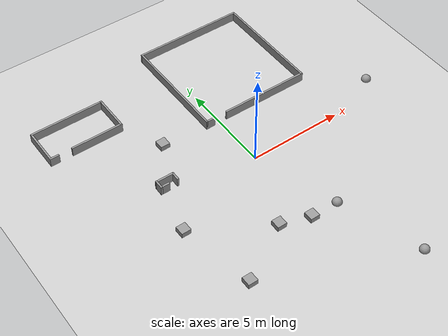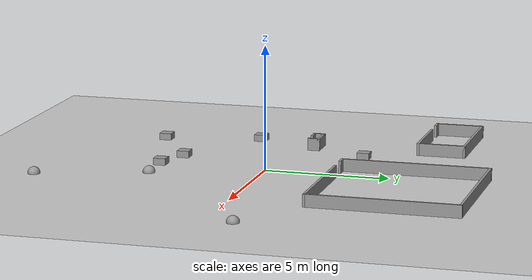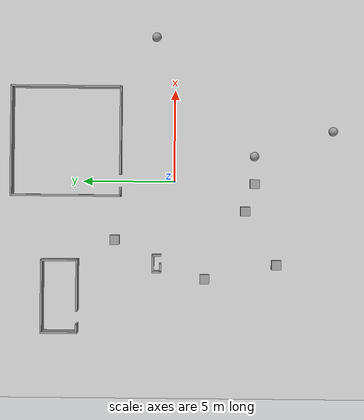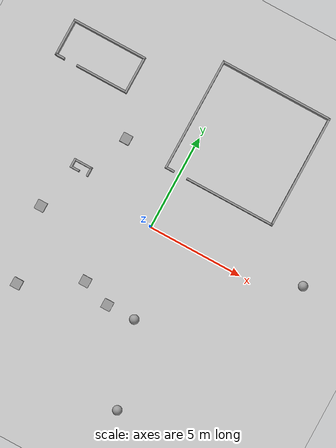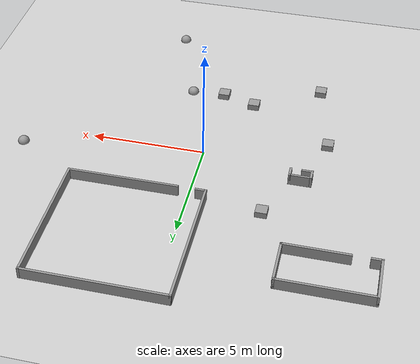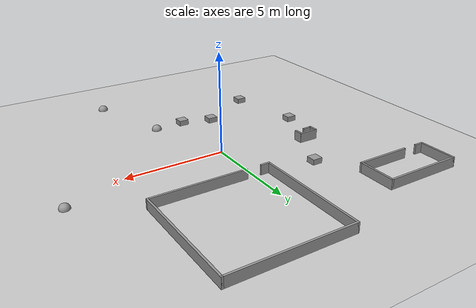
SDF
<sdf version="1.6">
 <world name="default">
  <model name="ground_plane">
   <static>1</static>
   <link name="link">
    <collision name="collision">
     <geometry><plane><normal>0 0 1</normal><size>20 20</size></plane></geometry>
     <surface>
      <contact><collide_bitmask>65535</collide_bitmask></contact>
      <friction><ode><mu>100</mu><mu2>50</mu2></ode></friction>
     </surface>
    </collision>
    <visual name="visual">
     <cast_shadows>0</cast_shadows>
     <geometry><plane><normal>0 0 1</normal><size>20 20</size></plane></geometry>
     <material>
      <script><uri>file://media/materials/scripts/gazebo.material</uri><name>Gazebo/Grey</name></script>
     </material>
    </visual>
   </link>
  </model>
  <model name="shape7">
   <pose>2.2 5.9 0 0 -0 0</pose>
   <link name="Wall_34">
    <collision name="Wall_34_Collision">
     <geometry><box><size>6 0.1 0.5</size></box></geometry>
     <pose>0 0 0.25 0 -0 0</pose>
    </collision>
    <visual name="Wall_34_Visual">
     <pose>0 0 0.25 0 -0 0</pose>
     <geometry><box><size>6 0.1 0.5</size></box></geometry>
     <material>
      <script><uri>file://media/materials/scripts/gazebo.material</uri><name>Gazebo/Grey</name></script>
      <ambient>1 1 1 1</ambient>
     </material>
     <meta><layer>0</layer></meta>
    </visual>
    <pose>0 2.95 0 0 -0 0</pose>
   </link>
   <link name="Wall_35">
    <collision name="Wall_35_Collision">
     <geometry><box><size>6 0.1 0.5</size></box></geometry>
     <pose>0 0 0.25 0 -0 0</pose>
    </collision>
    <visual name="Wall_35_Visual">
     <pose>0 0 0.25 0 -0 0</pose>
     <geometry><box><size>6 0.1 0.5</size></box></geometry>
     <material>
      <script><uri>file://media/materials/scripts/gazebo.material</uri><name>Gazebo/Grey</name></script>
      <ambient>1 1 1 1</ambient>
     </material>
     <meta><layer>0</layer></meta>
    </visual>
    <pose>2.95 0 0 0 -0 -1.5708</pose>
   </link>
   <link name="Wall_36">
    <collision name="Wall_36_Collision">
     <geometry><box><size>4.8 0.1 0.5</size></box></geometry>
     <pose>0 0 0.25 0 -0 0</pose>
    </collision>
    <visual name="Wall_36_Visual">
     <pose>0 0 0.25 0 -0 0</pose>
     <geometry><box><size>4.8 0.1 0.5</size></box></geometry>
     <material>
      <script><uri>file://media/materials/scripts/gazebo.material</uri><name>Gazebo/Grey</name></script>
      <ambient>1 1 1 1</ambient>
     </material>
     <meta><layer>0</layer></meta>
    </visual>
    <pose>0.6 -2.95 0 0 -0 3.14159</pose>
   </link>
   <link name="Wall_38">
    <collision name="Wall_38_Collision">
     <geometry><box><size>6 0.1 0.5</size></box></geometry>
     <pose>0 0 0.25 0 -0 0</pose>
    </collision>
    <visual name="Wall_38_Visual">
     <pose>0 0 0.25 0 -0 0</pose>
     <geometry><box><size>6 0.1 0.5</size></box></geometry>
     <material>
      <script><uri>file://media/materials/scripts/gazebo.material</uri><name>Gazebo/Grey</name></script>
      <ambient>1 1 1 1</ambient>
     </material>
     <meta><layer>0</layer></meta>
    </visual>
    <pose>-2.95 0 0 0 -0 -1.5708</pose>
   </link>
   <link name="Wall_39">
    <collision name="Wall_39_Collision">
     <geometry><box><size>0.5 0.1 0.5</size></box></geometry>
     <pose>0 0 0.25 0 -0 0</pose>
    </collision>
    <visual name="Wall_39_Visual">
     <pose>0 0 0.25 0 -0 0</pose>
     <geometry><box><size>0.5 0.1 0.5</size></box></geometry>
     <material>
      <script><uri>file://media/materials/scripts/gazebo.material</uri><name>Gazebo/Grey</name></script>
      <ambient>1 1 1 1</ambient>
     </material>
     <meta><layer>0</layer></meta>
    </visual>
    <pose>-2.75 -2.95 0 0 -0 0</pose>
   </link>
   <static>1</static>
  </model>
  <model name="shape0">
   <pose>-4.4 0.95 0 0 -0 0</pose>
   <link name="Wall_0">
    <pose>0 0.2 0 0 -0 0</pose>
    <inertial>
     <mass>1</mass>
     <inertia><ixx>1</ixx><ixy>0</ixy><ixz>0</ixz><iyy>1</iyy><iyz>0</iyz><izz>1</izz></inertia>
    </inertial>
    <visual name="Wall_0_Visual">
     <pose>0 0 0.25 0 -0 0</pose>
     <geometry><box><size>1 0.1 0.5</size></box></geometry>
     <material>
      <script><uri>file://media/materials/scripts/gazebo.material</uri><name>Gazebo/Grey</name></script>
      <ambient>1 1 1 1</ambient>
      <shader type="vertex"><normal_map>__default__</normal_map></shader>
      <diffuse>0.7 0.7 0.7 1</diffuse>
      <specular>0.01 0.01 0.01 1</specular>
      <emissive>0 0 0 1</emissive>
     </material>
     <meta><layer>0</layer></meta>
    </visual>
    <collision name="Wall_0_Collision">
     <pose>0 0 0.25 0 -0 0</pose>
     <geometry><box><size>1 0.1 0.5</size></box></geometry>
     <surface>
      <friction>
       <ode><mu>1</mu><mu2>1</mu2><fdir1>0 0 0</fdir1><slip1>0</slip1><slip2>0</slip2></ode>
       <torsional>
        <coefficient>1</coefficient>
        <patch_radius>0</patch_radius>
        <surface_radius>0</surface_radius>
        <use_patch_radius>1</use_patch_radius>
        <ode><slip>0</slip></ode>
       </torsional>
      </friction>
      <bounce><restitution_coefficient>0</restitution_coefficient><threshold>1e+06</threshold></bounce>
      <contact>
       <collide_without_contact>0</collide_without_contact>
       <collide_without_contact_bitmask>1</collide_without_contact_bitmask>
       <collide_bitmask>1</collide_bitmask>
       <ode>
        <soft_cfm>0</soft_cfm>
        <soft_erp>0.2</soft_erp>
        <kp>1e+13</kp>
        <kd>1</kd>
        <max_vel>0.01</max_vel>
        <min_depth>0</min_depth>
       </ode>
       <bullet>
        <split_impulse>1</split_impulse>
        <split_impulse_penetration_threshold>-0.01</split_impulse_penetration_threshold>
        <soft_cfm>0</soft_cfm>
        <soft_erp>0.2</soft_erp>
        <kp>1e+13</kp>
        <kd>1</kd>
       </bullet>
      </contact>
     </surface>
    </collision>
   </link>
   <link name="Wall_2">
    <pose>-0.45 0 0.01 0 0 -1.5708</pose>
    <inertial>
     <mass>1</mass>
     <inertia><ixx>1</ixx><ixy>0</ixy><ixz>0</ixz><iyy>1</iyy><iyz>0</iyz><izz>1</izz></inertia>
    </inertial>
    <visual name="Wall_2_Visual">
     <pose>0 0 0.25 0 -0 0</pose>
     <geometry><box><size>0.5 0.1 0.5</size></box></geometry>
     <material>
      <script><uri>file://media/materials/scripts/gazebo.material</uri><name>Gazebo/Grey</name></script>
      <ambient>1 1 1 1</ambient>
      <shader type="vertex"><normal_map>__default__</normal_map></shader>
      <diffuse>0.7 0.7 0.7 1</diffuse>
      <specular>0.01 0.01 0.01 1</specular>
      <emissive>0 0 0 1</emissive>
     </material>
     <meta><layer>0</layer></meta>
    </visual>
    <collision name="Wall_2_Collision">
     <pose>0 0 0.25 0 -0 0</pose>
     <geometry><box><size>0.5 0.1 0.5</size></box></geometry>
     <surface>
      <friction>
       <ode><mu>1</mu><mu2>1</mu2><fdir1>0 0 0</fdir1><slip1>0</slip1><slip2>0</slip2></ode>
       <torsional>
        <coefficient>1</coefficient>
        <patch_radius>0</patch_radius>
        <surface_radius>0</surface_radius>
        <use_patch_radius>1</use_patch_radius>
        <ode><slip>0</slip></ode>
       </torsional>
      </friction>
      <bounce><restitution_coefficient>0</restitution_coefficient><threshold>1e+06</threshold></bounce>
      <contact>
       <collide_without_contact>0</collide_without_contact>
       <collide_without_contact_bitmask>1</collide_without_contact_bitmask>
       <collide_bitmask>1</collide_bitmask>
       <ode>
        <soft_cfm>0</soft_cfm>
        <soft_erp>0.2</soft_erp>
        <kp>1e+13</kp>
        <kd>1</kd>
        <max_vel>0.01</max_vel>
        <min_depth>0</min_depth>
       </ode>
       <bullet>
        <split_impulse>1</split_impulse>
        <split_impulse_penetration_threshold>-0.01</split_impulse_penetration_threshold>
        <soft_cfm>0</soft_cfm>
        <soft_erp>0.2</soft_erp>
        <kp>1e+13</kp>
        <kd>1</kd>
       </bullet>
      </contact>
     </surface>
    </collision>
   </link>
   <link name="Wall_4">
    <pose>0.45 0 0 0 0 -1.5708</pose>
    <inertial>
     <mass>1</mass>
     <inertia><ixx>1</ixx><ixy>0</ixy><ixz>0</ixz><iyy>1</iyy><iyz>0</iyz><izz>1</izz></inertia>
    </inertial>
    <visual name="Wall_4_Visual">
     <pose>0 0 0.25 0 -0 0</pose>
     <geometry><box><size>0.5 0.1 0.5</size></box></geometry>
     <material>
      <script><uri>file://media/materials/scripts/gazebo.material</uri><name>Gazebo/Grey</name></script>
      <ambient>1 1 1 1</ambient>
      <shader type="vertex"><normal_map>__default__</normal_map></shader>
      <diffuse>0.7 0.7 0.7 1</diffuse>
      <specular>0.01 0.01 0.01 1</specular>
      <emissive>0 0 0 1</emissive>
     </material>
     <meta><layer>0</layer></meta>
    </visual>
    <collision name="Wall_4_Collision">
     <pose>0 0 0.25 0 -0 0</pose>
     <geometry><box><size>0.5 0.1 0.5</size></box></geometry>
     <surface>
      <friction>
       <ode><mu>1</mu><mu2>1</mu2><fdir1>0 0 0</fdir1><slip1>0</slip1><slip2>0</slip2></ode>
       <torsional>
        <coefficient>1</coefficient>
        <patch_radius>0</patch_radius>
        <surface_radius>0</surface_radius>
        <use_patch_radius>1</use_patch_radius>
        <ode><slip>0</slip></ode>
       </torsional>
      </friction>
      <bounce><restitution_coefficient>0</restitution_coefficient><threshold>1e+06</threshold></bounce>
      <contact>
       <collide_without_contact>0</collide_without_contact>
       <collide_without_contact_bitmask>1</collide_without_contact_bitmask>
       <collide_bitmask>1</collide_bitmask>
       <ode>
        <soft_cfm>0</soft_cfm>
        <soft_erp>0.2</soft_erp>
        <kp>1e+13</kp>
        <kd>1</kd>
        <max_vel>0.01</max_vel>
        <min_depth>0</min_depth>
       </ode>
       <bullet>
        <split_impulse>1</split_impulse>
        <split_impulse_penetration_threshold>-0.01</split_impulse_penetration_threshold>
        <soft_cfm>0</soft_cfm>
        <soft_erp>0.2</soft_erp>
        <kp>1e+13</kp>
        <kd>1</kd>
       </bullet>
      </contact>
     </surface>
    </collision>
   </link>
   <link name="Wall_7">
    <pose>-0.25 -0.2 0 0 -0 0</pose>
    <inertial>
     <mass>1</mass>
     <inertia><ixx>1</ixx><ixy>0</ixy><ixz>0</ixz><iyy>1</iyy><iyz>0</iyz><izz>1</izz></inertia>
    </inertial>
    <visual name="Wall_7_Visual">
     <pose>0 0 0.25 0 -0 0</pose>
     <geometry><box><size>0.5 0.1 0.5</size></box></geometry>
     <material>
      <script><uri>file://media/materials/scripts/gazebo.material</uri><name>Gazebo/Grey</name></script>
      <ambient>1 1 1 1</ambient>
      <shader type="vertex"><normal_map>__default__</normal_map></shader>
      <diffuse>0.7 0.7 0.7 1</diffuse>
      <specular>0.01 0.01 0.01 1</specular>
      <emissive>0 0 0 1</emissive>
     </material>
     <meta><layer>0</layer></meta>
    </visual>
    <collision name="Wall_7_Collision">
     <pose>0 0 0.25 0 -0 0</pose>
     <geometry><box><size>0.5 0.1 0.5</size></box></geometry>
     <surface>
      <friction>
       <ode><mu>1</mu><mu2>1</mu2><fdir1>0 0 0</fdir1><slip1>0</slip1><slip2>0</slip2></ode>
       <torsional>
        <coefficient>1</coefficient>
        <patch_radius>0</patch_radius>
        <surface_radius>0</surface_radius>
        <use_patch_radius>1</use_patch_radius>
        <ode><slip>0</slip></ode>
       </torsional>
      </friction>
      <bounce><restitution_coefficient>0</restitution_coefficient><threshold>1e+06</threshold></bounce>
      <contact>
       <collide_without_contact>0</collide_without_contact>
       <collide_without_contact_bitmask>1</collide_without_contact_bitmask>
       <collide_bitmask>1</collide_bitmask>
       <ode>
        <soft_cfm>0</soft_cfm>
        <soft_erp>0.2</soft_erp>
        <kp>1e+13</kp>
        <kd>1</kd>
        <max_vel>0.01</max_vel>
        <min_depth>0</min_depth>
       </ode>
       <bullet>
        <split_impulse>1</split_impulse>
        <split_impulse_penetration_threshold>-0.01</split_impulse_penetration_threshold>
        <soft_cfm>0</soft_cfm>
        <soft_erp>0.2</soft_erp>
        <kp>1e+13</kp>
        <kd>1</kd>
       </bullet>
      </contact>
     </surface>
    </collision>
   </link>
   <static>1</static>
  </model>
  <model name="box_d=50">
   <link name="link_2">
    <inertial>
     <mass>1</mass>
     <inertia>
      <ixx>0.166667</ixx>
      <ixy>0</ixy>
      <ixz>0</ixz>
      <iyy>0.166667</iyy>
      <iyz>0</iyz>
      <izz>0.166667</izz>
     </inertia>
    </inertial>
    <pose>-4.45 -5.55 0 0 -0 0</pose>
    <visual name="visual">
     <geometry><box><size>0.5 0.5 0.5</size></box></geometry>
     <material>
      <lighting>1</lighting>
      <script><uri>file://media/materials/scripts/gazebo.material</uri><name>Gazebo/Grey</name></script>
      <shader type="vertex"><normal_map>__default__</normal_map></shader>
      <ambient>0.3 0.3 0.3 1</ambient>
      <diffuse>0.7 0.7 0.7 1</diffuse>
      <specular>0.01 0.01 0.01 1</specular>
      <emissive>0 0 0 1</emissive>
     </material>
    </visual>
    <collision name="collision">
     <geometry><box><size>0.5 0.5 0.5</size></box></geometry>
     <surface>
      <friction>
       <ode><mu>1</mu><mu2>1</mu2><fdir1>0 0 0</fdir1><slip1>0</slip1><slip2>0</slip2></ode>
       <torsional>
        <coefficient>1</coefficient>
        <patch_radius>0</patch_radius>
        <surface_radius>0</surface_radius>
        <use_patch_radius>1</use_patch_radius>
        <ode><slip>0</slip></ode>
       </torsional>
      </friction>
      <bounce><restitution_coefficient>0</restitution_coefficient><threshold>1e+06</threshold></bounce>
      <contact>
       <collide_without_contact>0</collide_without_contact>
       <collide_without_contact_bitmask>1</collide_without_contact_bitmask>
       <collide_bitmask>1</collide_bitmask>
       <ode>
        <soft_cfm>0</soft_cfm>
        <soft_erp>0.2</soft_erp>
        <kp>1e+13</kp>
        <kd>1</kd>
        <max_vel>0.01</max_vel>
        <min_depth>0</min_depth>
       </ode>
       <bullet>
        <split_impulse>1</split_impulse>
        <split_impulse_penetration_threshold>-0.01</split_impulse_penetration_threshold>
        <soft_cfm>0</soft_cfm>
        <soft_erp>0.2</soft_erp>
        <kp>1e+13</kp>
        <kd>1</kd>
       </bullet>
      </contact>
     </surface>
    </collision>
   </link>
   <static>0</static>
  </model>
  <model name="ball_d=50">
   <link name="link_1">
    <inertial>
     <mass>1</mass>
     <inertia><ixx>0.1</ixx><ixy>0</ixy><ixz>0</ixz><iyy>0.1</iyy><iyz>0</iyz><izz>0.1</izz></inertia>
    </inertial>
    <pose>1.45 -4.35 0 0 -0 0</pose>
    <visual name="visual">
     <geometry><sphere><radius>0.25</radius></sphere></geometry>
     <material>
      <lighting>1</lighting>
      <script><uri>file://media/materials/scripts/gazebo.material</uri><name>Gazebo/Grey</name></script>
      <shader type="vertex"><normal_map>__default__</normal_map></shader>
      <ambient>0.3 0.3 0.3 1</ambient>
      <diffuse>0.7 0.7 0.7 1</diffuse>
      <specular>0.01 0.01 0.01 1</specular>
      <emissive>0 0 0 1</emissive>
     </material>
    </visual>
    <collision name="collision">
     <geometry><sphere><radius>0.25</radius></sphere></geometry>
     <surface>
      <friction>
       <ode><mu>1</mu><mu2>1</mu2><fdir1>0 0 0</fdir1><slip1>0</slip1><slip2>0</slip2></ode>
       <torsional>
        <coefficient>1</coefficient>
        <patch_radius>0</patch_radius>
        <surface_radius>0</surface_radius>
        <use_patch_radius>1</use_patch_radius>
        <ode><slip>0</slip></ode>
       </torsional>
      </friction>
      <bounce><restitution_coefficient>0</restitution_coefficient><threshold>1e+06</threshold></bounce>
      <contact>
       <collide_without_contact>0</collide_without_contact>
       <collide_without_contact_bitmask>1</collide_without_contact_bitmask>
       <collide_bitmask>1</collide_bitmask>
       <ode>
        <soft_cfm>0</soft_cfm>
        <soft_erp>0.2</soft_erp>
        <kp>1e+13</kp>
        <kd>1</kd>
        <max_vel>0.01</max_vel>
        <min_depth>0</min_depth>
       </ode>
       <bullet>
        <split_impulse>1</split_impulse>
        <split_impulse_penetration_threshold>-0.01</split_impulse_penetration_threshold>
        <soft_cfm>0</soft_cfm>
        <soft_erp>0.2</soft_erp>
        <kp>1e+13</kp>
        <kd>1</kd>
       </bullet>
      </contact>
     </surface>
    </collision>
   </link>
   <static>0</static>
  </model>
  <model name="box_d=50">
   <link name="link_2">
    <inertial>
     <mass>1</mass>
     <inertia>
      <ixx>0.166667</ixx>
      <ixy>0</ixy>
      <ixz>0</ixz>
      <iyy>0.166667</iyy>
      <iyz>0</iyz>
      <izz>0.166667</izz>
     </inertia>
    </inertial>
    <pose>-0.0500002 -4.35 0 0 -0 0</pose>
    <visual name="visual">
     <geometry><box><size>0.5 0.5 0.5</size></box></geometry>
     <material>
      <lighting>1</lighting>
      <script><uri>file://media/materials/scripts/gazebo.material</uri><name>Gazebo/Grey</name></script>
      <shader type="vertex"><normal_map>__default__</normal_map></shader>
      <ambient>0.3 0.3 0.3 1</ambient>
      <diffuse>0.7 0.7 0.7 1</diffuse>
      <specular>0.01 0.01 0.01 1</specular>
      <emissive>0 0 0 1</emissive>
     </material>
    </visual>
    <collision name="collision">
     <geometry><box><size>0.5 0.5 0.5</size></box></geometry>
     <surface>
      <friction>
       <ode><mu>1</mu><mu2>1</mu2><fdir1>0 0 0</fdir1><slip1>0</slip1><slip2>0</slip2></ode>
       <torsional>
        <coefficient>1</coefficient>
        <patch_radius>0</patch_radius>
        <surface_radius>0</surface_radius>
        <use_patch_radius>1</use_patch_radius>
        <ode><slip>0</slip></ode>
       </torsional>
      </friction>
      <bounce><restitution_coefficient>0</restitution_coefficient><threshold>1e+06</threshold></bounce>
      <contact>
       <collide_without_contact>0</collide_without_contact>
       <collide_without_contact_bitmask>1</collide_without_contact_bitmask>
       <collide_bitmask>1</collide_bitmask>
       <ode>
        <soft_cfm>0</soft_cfm>
        <soft_erp>0.2</soft_erp>
        <kp>1e+13</kp>
        <kd>1</kd>
        <max_vel>0.01</max_vel>
        <min_depth>0</min_depth>
       </ode>
       <bullet>
        <split_impulse>1</split_impulse>
        <split_impulse_penetration_threshold>-0.01</split_impulse_penetration_threshold>
        <soft_cfm>0</soft_cfm>
        <soft_erp>0.2</soft_erp>
        <kp>1e+13</kp>
        <kd>1</kd>
       </bullet>
      </contact>
     </surface>
    </collision>
   </link>
   <static>0</static>
  </model>
  <model name="box_d=50">
   <link name="link_2">
    <inertial>
     <mass>1</mass>
     <inertia>
      <ixx>0.166667</ixx>
      <ixy>0</ixy>
      <ixz>0</ixz>
      <iyy>0.166667</iyy>
      <iyz>0</iyz>
      <izz>0.166667</izz>
     </inertia>
    </inertial>
    <pose>-1.55 -3.85 0 0 -0 0</pose>
    <visual name="visual">
     <geometry><box><size>0.5 0.5 0.5</size></box></geometry>
     <material>
      <lighting>1</lighting>
      <script><uri>file://media/materials/scripts/gazebo.material</uri><name>Gazebo/Grey</name></script>
      <shader type="vertex"><normal_map>__default__</normal_map></shader>
      <ambient>0.3 0.3 0.3 1</ambient>
      <diffuse>0.7 0.7 0.7 1</diffuse>
      <specular>0.01 0.01 0.01 1</specular>
      <emissive>0 0 0 1</emissive>
     </material>
    </visual>
    <collision name="collision">
     <geometry><box><size>0.5 0.5 0.5</size></box></geometry>
     <surface>
      <friction>
       <ode><mu>1</mu><mu2>1</mu2><fdir1>0 0 0</fdir1><slip1>0</slip1><slip2>0</slip2></ode>
       <torsional>
        <coefficient>1</coefficient>
        <patch_radius>0</patch_radius>
        <surface_radius>0</surface_radius>
        <use_patch_radius>1</use_patch_radius>
        <ode><slip>0</slip></ode>
       </torsional>
      </friction>
      <bounce><restitution_coefficient>0</restitution_coefficient><threshold>1e+06</threshold></bounce>
      <contact>
       <collide_without_contact>0</collide_without_contact>
       <collide_without_contact_bitmask>1</collide_without_contact_bitmask>
       <collide_bitmask>1</collide_bitmask>
       <ode>
        <soft_cfm>0</soft_cfm>
        <soft_erp>0.2</soft_erp>
        <kp>1e+13</kp>
        <kd>1</kd>
        <max_vel>0.01</max_vel>
        <min_depth>0</min_depth>
       </ode>
       <bullet>
        <split_impulse>1</split_impulse>
        <split_impulse_penetration_threshold>-0.01</split_impulse_penetration_threshold>
        <soft_cfm>0</soft_cfm>
        <soft_erp>0.2</soft_erp>
        <kp>1e+13</kp>
        <kd>1</kd>
       </bullet>
      </contact>
     </surface>
    </collision>
   </link>
   <static>0</static>
  </model>
  <model name="box_d=50">
   <link name="link_2">
    <inertial>
     <mass>1</mass>
     <inertia>
      <ixx>0.166667</ixx>
      <ixy>0</ixy>
      <ixz>0</ixz>
      <iyy>0.166667</iyy>
      <iyz>0</iyz>
      <izz>0.166667</izz>
     </inertia>
    </inertial>
    <pose>-5.25 -1.65 0 0 -0 0</pose>
    <visual name="visual">
     <geometry><box><size>0.5 0.5 0.5</size></box></geometry>
     <material>
      <lighting>1</lighting>
      <script><uri>file://media/materials/scripts/gazebo.material</uri><name>Gazebo/Grey</name></script>
      <shader type="vertex"><normal_map>__default__</normal_map></shader>
      <ambient>0.3 0.3 0.3 1</ambient>
      <diffuse>0.7 0.7 0.7 1</diffuse>
      <specular>0.01 0.01 0.01 1</specular>
      <emissive>0 0 0 1</emissive>
     </material>
    </visual>
    <collision name="collision">
     <geometry><box><size>0.5 0.5 0.5</size></box></geometry>
     <surface>
      <friction>
       <ode><mu>1</mu><mu2>1</mu2><fdir1>0 0 0</fdir1><slip1>0</slip1><slip2>0</slip2></ode>
       <torsional>
        <coefficient>1</coefficient>
        <patch_radius>0</patch_radius>
        <surface_radius>0</surface_radius>
        <use_patch_radius>1</use_patch_radius>
        <ode><slip>0</slip></ode>
       </torsional>
      </friction>
      <bounce><restitution_coefficient>0</restitution_coefficient><threshold>1e+06</threshold></bounce>
      <contact>
       <collide_without_contact>0</collide_without_contact>
       <collide_without_contact_bitmask>1</collide_without_contact_bitmask>
       <collide_bitmask>1</collide_bitmask>
       <ode>
        <soft_cfm>0</soft_cfm>
        <soft_erp>0.2</soft_erp>
        <kp>1e+13</kp>
        <kd>1</kd>
        <max_vel>0.01</max_vel>
        <min_depth>0</min_depth>
       </ode>
       <bullet>
        <split_impulse>1</split_impulse>
        <split_impulse_penetration_threshold>-0.01</split_impulse_penetration_threshold>
        <soft_cfm>0</soft_cfm>
        <soft_erp>0.2</soft_erp>
        <kp>1e+13</kp>
        <kd>1</kd>
       </bullet>
      </contact>
     </surface>
    </collision>
   </link>
   <static>0</static>
  </model>
  <model name="shape2">
   <pose>-6.2 6.2 0 0 -0 0</pose>
   <link name="Wall_0">
    <collision name="Wall_0_Collision">
     <geometry><box><size>3.98685 0.1 0.5</size></box></geometry>
     <pose>0 0 0.25 0 -0 0</pose>
    </collision>
    <visual name="Wall_0_Visual">
     <pose>0 0 0.25 0 -0 0</pose>
     <geometry><box><size>3.98685 0.1 0.5</size></box></geometry>
     <material>
      <script><uri>file://media/materials/scripts/gazebo.material</uri><name>Gazebo/Grey</name></script>
      <ambient>1 1 1 1</ambient>
     </material>
     <meta><layer>0</layer></meta>
    </visual>
    <pose>0.003288 0.95 0 0 -0 0</pose>
   </link>
   <link name="Wall_1">
    <collision name="Wall_1_Collision">
     <geometry><box><size>2 0.1 0.5</size></box></geometry>
     <pose>0 0 0.25 0 -0 0</pose>
    </collision>
    <visual name="Wall_1_Visual">
     <pose>0 0 0.25 0 -0 0</pose>
     <geometry><box><size>2 0.1 0.5</size></box></geometry>
     <material>
      <script><uri>file://media/materials/scripts/gazebo.material</uri><name>Gazebo/Grey</name></script>
      <ambient>1 1 1 1</ambient>
     </material>
     <meta><layer>0</layer></meta>
    </visual>
    <pose>1.94671 0 0 0 -0 -1.5708</pose>
   </link>
   <link name="Wall_2">
    <collision name="Wall_2_Collision">
     <geometry><box><size>2.8 0.1 0.5</size></box></geometry>
     <pose>0 0 0.25 0 -0 0</pose>
    </collision>
    <visual name="Wall_2_Visual">
     <pose>0 0 0.25 0 -0 0</pose>
     <geometry><box><size>2.8 0.1 0.5</size></box></geometry>
     <material>
      <script><uri>file://media/materials/scripts/gazebo.material</uri><name>Gazebo/Grey</name></script>
      <ambient>1 1 1 1</ambient>
     </material>
     <meta><layer>0</layer></meta>
    </visual>
    <pose>0.596712 -0.95 0 0 -0 3.14159</pose>
   </link>
   <link name="Wall_4">
    <collision name="Wall_4_Collision">
     <geometry><box><size>2 0.1 0.5</size></box></geometry>
     <pose>0 0 0.25 0 -0 0</pose>
    </collision>
    <visual name="Wall_4_Visual">
     <pose>0 0 0.25 0 -0 0</pose>
     <geometry><box><size>2 0.1 0.5</size></box></geometry>
     <material>
      <script><uri>file://media/materials/scripts/gazebo.material</uri><name>Gazebo/Grey</name></script>
      <ambient>1 1 1 1</ambient>
     </material>
     <meta><layer>0</layer></meta>
    </visual>
    <pose>-1.94671 0 0 0 -0 -1.5708</pose>
   </link>
   <link name="Wall_5">
    <collision name="Wall_5_Collision">
     <geometry><box><size>0.5 0.1 0.5</size></box></geometry>
     <pose>0 0 0.25 0 -0 0</pose>
    </collision>
    <visual name="Wall_5_Visual">
     <pose>0 0 0.25 0 -0 0</pose>
     <geometry><box><size>0.5 0.1 0.5</size></box></geometry>
     <material>
      <script><uri>file://media/materials/scripts/gazebo.material</uri><name>Gazebo/Grey</name></script>
      <ambient>1 1 1 1</ambient>
     </material>
     <meta><layer>0</layer></meta>
    </visual>
    <pose>-1.74671 -0.95 0 0 -0 0</pose>
   </link>
   <static>1</static>
  </model>
  <model name="ball_d=50">
   <link name="link_1">
    <inertial>
     <mass>1</mass>
     <inertia><ixx>0.1</ixx><ixy>0</ixy><ixz>0</ixz><iyy>0.1</iyy><iyz>0</iyz><izz>0.1</izz></inertia>
    </inertial>
    <pose>2.85 -8.65 0 0 -0 0</pose>
    <visual name="visual">
     <geometry><sphere><radius>0.25</radius></sphere></geometry>
     <material>
      <lighting>1</lighting>
      <script><uri>file://media/materials/scripts/gazebo.material</uri><name>Gazebo/Grey</name></script>
      <shader type="vertex"><normal_map>__default__</normal_map></shader>
      <ambient>0.3 0.3 0.3 1</ambient>
      <diffuse>0.7 0.7 0.7 1</diffuse>
      <specular>0.01 0.01 0.01 1</specular>
      <emissive>0 0 0 1</emissive>
     </material>
    </visual>
    <collision name="collision">
     <geometry><sphere><radius>0.25</radius></sphere></geometry>
     <surface>
      <friction>
       <ode><mu>1</mu><mu2>1</mu2><fdir1>0 0 0</fdir1><slip1>0</slip1><slip2>0</slip2></ode>
       <torsional>
        <coefficient>1</coefficient>
        <patch_radius>0</patch_radius>
        <surface_radius>0</surface_radius>
        <use_patch_radius>1</use_patch_radius>
        <ode><slip>0</slip></ode>
       </torsional>
      </friction>
      <bounce><restitution_coefficient>0</restitution_coefficient><threshold>1e+06</threshold></bounce>
      <contact>
       <collide_without_contact>0</collide_without_contact>
       <collide_without_contact_bitmask>1</collide_without_contact_bitmask>
       <collide_bitmask>1</collide_bitmask>
       <ode>
        <soft_cfm>0</soft_cfm>
        <soft_erp>0.2</soft_erp>
        <kp>1e+13</kp>
        <kd>1</kd>
        <max_vel>0.01</max_vel>
        <min_depth>0</min_depth>
       </ode>
       <bullet>
        <split_impulse>1</split_impulse>
        <split_impulse_penetration_threshold>-0.01</split_impulse_penetration_threshold>
        <soft_cfm>0</soft_cfm>
        <soft_erp>0.2</soft_erp>
        <kp>1e+13</kp>
        <kd>1</kd>
       </bullet>
      </contact>
     </surface>
    </collision>
   </link>
   <static>0</static>
  </model>
  <model name="ball_d=50">
   <link name="link_1">
    <inertial>
     <mass>1</mass>
     <inertia><ixx>0.1</ixx><ixy>0</ixy><ixz>0</ixz><iyy>0.1</iyy><iyz>0</iyz><izz>0.1</izz></inertia>
    </inertial>
    <pose>7.95 1.05 0 0 -0 0</pose>
    <visual name="visual">
     <geometry><sphere><radius>0.25</radius></sphere></geometry>
     <material>
      <lighting>1</lighting>
      <script><uri>file://media/materials/scripts/gazebo.material</uri><name>Gazebo/Grey</name></script>
      <shader type="vertex"><normal_map>__default__</normal_map></shader>
      <ambient>0.3 0.3 0.3 1</ambient>
      <diffuse>0.7 0.7 0.7 1</diffuse>
      <specular>0.01 0.01 0.01 1</specular>
      <emissive>0 0 0 1</emissive>
     </material>
    </visual>
    <collision name="collision">
     <geometry><sphere><radius>0.25</radius></sphere></geometry>
     <surface>
      <friction>
       <ode><mu>1</mu><mu2>1</mu2><fdir1>0 0 0</fdir1><slip1>0</slip1><slip2>0</slip2></ode>
       <torsional>
        <coefficient>1</coefficient>
        <patch_radius>0</patch_radius>
        <surface_radius>0</surface_radius>
        <use_patch_radius>1</use_patch_radius>
        <ode><slip>0</slip></ode>
       </torsional>
      </friction>
      <bounce><restitution_coefficient>0</restitution_coefficient><threshold>1e+06</threshold></bounce>
      <contact>
       <collide_without_contact>0</collide_without_contact>
       <collide_without_contact_bitmask>1</collide_without_contact_bitmask>
       <collide_bitmask>1</collide_bitmask>
       <ode>
        <soft_cfm>0</soft_cfm>
        <soft_erp>0.2</soft_erp>
        <kp>1e+13</kp>
        <kd>1</kd>
        <max_vel>0.01</max_vel>
        <min_depth>0</min_depth>
       </ode>
       <bullet>
        <split_impulse>1</split_impulse>
        <split_impulse_penetration_threshold>-0.01</split_impulse_penetration_threshold>
        <soft_cfm>0</soft_cfm>
        <soft_erp>0.2</soft_erp>
        <kp>1e+13</kp>
        <kd>1</kd>
       </bullet>
      </contact>
     </surface>
    </collision>
   </link>
   <static>0</static>
  </model>
  <model name="box_d=50">
   <link name="link_2">
    <inertial>
     <mass>1</mass>
     <inertia>
      <ixx>0.166667</ixx>
      <ixy>0</ixy>
      <ixz>0</ixz>
      <iyy>0.166667</iyy>
      <iyz>0</iyz>
      <izz>0.166667</izz>
     </inertia>
    </inertial>
    <pose>-3.15 3.25 0 0 -0 0</pose>
    <visual name="visual">
     <geometry><box><size>0.5 0.5 0.5</size></box></geometry>
     <material>
      <lighting>1</lighting>
      <script><uri>file://media/materials/scripts/gazebo.material</uri><name>Gazebo/Grey</name></script>
      <shader type="vertex"><normal_map>__default__</normal_map></shader>
      <ambient>0.3 0.3 0.3 1</ambient>
      <diffuse>0.7 0.7 0.7 1</diffuse>
      <specular>0.01 0.01 0.01 1</specular>
      <emissive>0 0 0 1</emissive>
     </material>
    </visual>
    <collision name="collision">
     <geometry><box><size>0.5 0.5 0.5</size></box></geometry>
     <surface>
      <friction>
       <ode><mu>1</mu><mu2>1</mu2><fdir1>0 0 0</fdir1><slip1>0</slip1><slip2>0</slip2></ode>
       <torsional>
        <coefficient>1</coefficient>
        <patch_radius>0</patch_radius>
        <surface_radius>0</surface_radius>
        <use_patch_radius>1</use_patch_radius>
        <ode><slip>0</slip></ode>
       </torsional>
      </friction>
      <bounce><restitution_coefficient>0</restitution_coefficient><threshold>1e+06</threshold></bounce>
      <contact>
       <collide_without_contact>0</collide_without_contact>
       <collide_without_contact_bitmask>1</collide_without_contact_bitmask>
       <collide_bitmask>1</collide_bitmask>
       <ode>
        <soft_cfm>0</soft_cfm>
        <soft_erp>0.2</soft_erp>
        <kp>1e+13</kp>
        <kd>1</kd>
        <max_vel>0.01</max_vel>
        <min_depth>0</min_depth>
       </ode>
       <bullet>
        <split_impulse>1</split_impulse>
        <split_impulse_penetration_threshold>-0.01</split_impulse_penetration_threshold>
        <soft_cfm>0</soft_cfm>
        <soft_erp>0.2</soft_erp>
        <kp>1e+13</kp>
        <kd>1</kd>
       </bullet>
      </contact>
     </surface>
    </collision>
   </link>
   <static>0</static>
  </model>
 </world>
</sdf>
